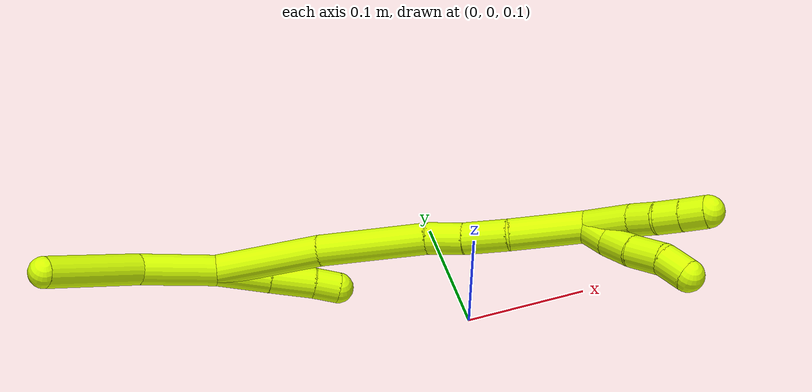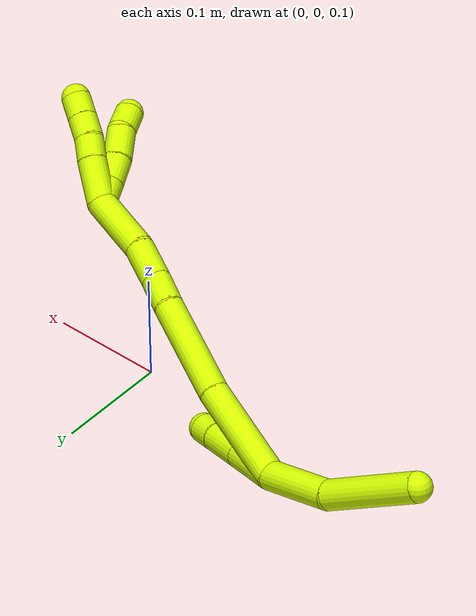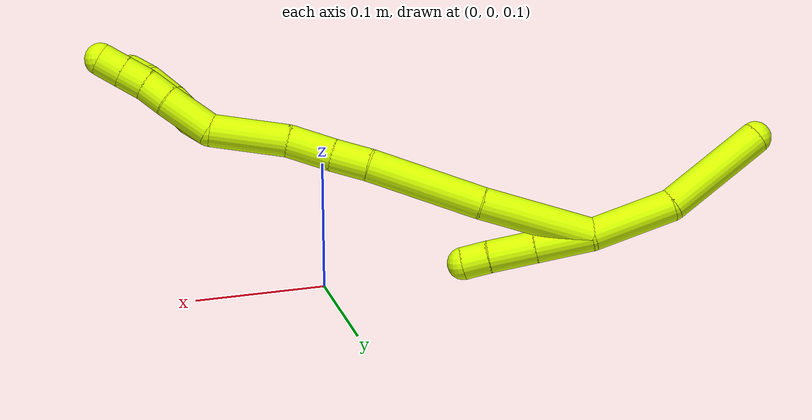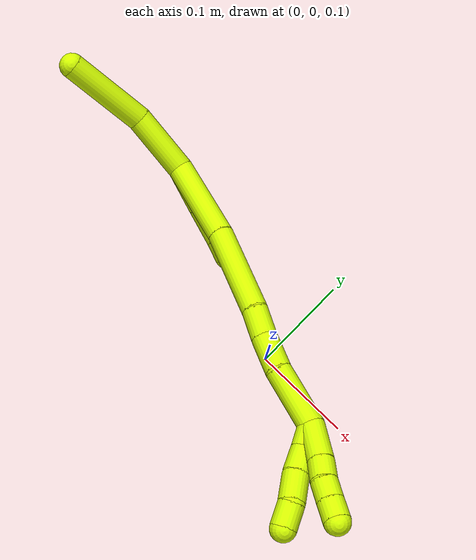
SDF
<sdf version="1.7">
 <world name="default">
  <model name="15">
   <static>0</static>
   <link name="15">
    <collision name="collision-cylinder-e_1_2_8">
     <pose>-0.031103 -0.007556 0.003447 1.14281 -1.30988 -0.917365</pose>
     <geometry><cylinder><radius>0.0125</radius><length>0.064386</length></cylinder></geometry>
     <surface>
      <friction><ode><mu>1.16</mu><mu2>1.16</mu2><slip1>0</slip1><slip2>0</slip2></ode></friction>
      <contact><ode><kp>1e+06</kp><kd>1</kd><max_vel>0</max_vel><min_depth>0.001</min_depth></ode></contact>
     </surface>
    </collision>
    <visual name="visual-cylinder-e_1_2_8">
     <pose>-0.031103 -0.007556 0.003447 1.14281 -1.30988 -0.917365</pose>
     <geometry><cylinder><radius>0.0125</radius><length>0.064386</length></cylinder></geometry>
     <material><ambient>0.835294 1 0 1</ambient></material>
    </visual>
    <collision name="collision-cylinder-e_2_8_6">
     <pose>-0.09797 -0.033573 0.021476 0.902258 -0.988933 -0.510956</pose>
     <geometry><cylinder><radius>0.0125</radius><length>0.085614</length></cylinder></geometry>
     <surface>
      <friction><ode><mu>1.16</mu><mu2>1.16</mu2><slip1>0</slip1><slip2>0</slip2></ode></friction>
      <contact><ode><kp>1e+06</kp><kd>1</kd><max_vel>0</max_vel><min_depth>0.001</min_depth></ode></contact>
     </surface>
    </collision>
    <visual name="visual-cylinder-e_2_8_6">
     <pose>-0.09797 -0.033573 0.021476 0.902258 -0.988933 -0.510956</pose>
     <geometry><cylinder><radius>0.0125</radius><length>0.085614</length></cylinder></geometry>
     <material><ambient>0.835294 1 0 1</ambient></material>
    </visual>
    <collision name="collision-cylinder-e_1_2_9">
     <pose>0.021823 0.000692 -0.000526 -2.22 1.53098 -2.1879</pose>
     <geometry><cylinder><radius>0.0125</radius><length>0.043681</length></cylinder></geometry>
     <surface>
      <friction><ode><mu>1.16</mu><mu2>1.16</mu2><slip1>0</slip1><slip2>0</slip2></ode></friction>
      <contact><ode><kp>1e+06</kp><kd>1</kd><max_vel>0</max_vel><min_depth>0.001</min_depth></ode></contact>
     </surface>
    </collision>
    <visual name="visual-cylinder-e_1_2_9">
     <pose>0.021823 0.000692 -0.000526 -2.22 1.53098 -2.1879</pose>
     <geometry><cylinder><radius>0.0125</radius><length>0.043681</length></cylinder></geometry>
     <material><ambient>0.835294 1 0 1</ambient></material>
    </visual>
    <collision name="collision-cylinder-e_2_9_10">
     <pose>0.061522 0.002163 -0.001398 -1.99042 1.52315 -1.94649</pose>
     <geometry><cylinder><radius>0.0125</radius><length>0.035793</length></cylinder></geometry>
     <surface>
      <friction><ode><mu>1.16</mu><mu2>1.16</mu2><slip1>0</slip1><slip2>0</slip2></ode></friction>
      <contact><ode><kp>1e+06</kp><kd>1</kd><max_vel>0</max_vel><min_depth>0.001</min_depth></ode></contact>
     </surface>
    </collision>
    <visual name="visual-cylinder-e_2_9_10">
     <pose>0.061522 0.002163 -0.001398 -1.99042 1.52315 -1.94649</pose>
     <geometry><cylinder><radius>0.0125</radius><length>0.035793</length></cylinder></geometry>
     <material><ambient>0.835294 1 0 1</ambient></material>
    </visual>
    <collision name="collision-cylinder-e_3_10_5">
     <pose>0.089635 0.002913 -0.002488 3.10344 1.49834 3.10057</pose>
     <geometry><cylinder><radius>0.0125</radius><length>0.020526</length></cylinder></geometry>
     <surface>
      <friction><ode><mu>1.16</mu><mu2>1.16</mu2><slip1>0</slip1><slip2>0</slip2></ode></friction>
      <contact><ode><kp>1e+06</kp><kd>1</kd><max_vel>0</max_vel><min_depth>0.001</min_depth></ode></contact>
     </surface>
    </collision>
    <visual name="visual-cylinder-e_3_10_5">
     <pose>0.089635 0.002913 -0.002488 3.10344 1.49834 3.10057</pose>
     <geometry><cylinder><radius>0.0125</radius><length>0.020526</length></cylinder></geometry>
     <material><ambient>0.835294 1 0 1</ambient></material>
    </visual>
    <collision name="collision-cylinder-e_1_2_11">
     <pose>0.038336 0.001782 0.020705 -0.085856 1.07405 -0.051138</pose>
     <geometry><cylinder><radius>0.0125</radius><length>0.087212</length></cylinder></geometry>
     <surface>
      <friction><ode><mu>1.16</mu><mu2>1.16</mu2><slip1>0</slip1><slip2>0</slip2></ode></friction>
      <contact><ode><kp>1e+06</kp><kd>1</kd><max_vel>0</max_vel><min_depth>0.001</min_depth></ode></contact>
     </surface>
    </collision>
    <visual name="visual-cylinder-e_1_2_11">
     <pose>0.038336 0.001782 0.020705 -0.085856 1.07405 -0.051138</pose>
     <geometry><cylinder><radius>0.0125</radius><length>0.087212</length></cylinder></geometry>
     <material><ambient>0.835294 1 0 1</ambient></material>
    </visual>
    <collision name="collision-cylinder-e_2_11_12">
     <pose>0.115292 0.000546 0.063176 0.137758 1.05349 0.080197</pose>
     <geometry><cylinder><radius>0.0125</radius><length>0.088869</length></cylinder></geometry>
     <surface>
      <friction><ode><mu>1.16</mu><mu2>1.16</mu2><slip1>0</slip1><slip2>0</slip2></ode></friction>
      <contact><ode><kp>1e+06</kp><kd>1</kd><max_vel>0</max_vel><min_depth>0.001</min_depth></ode></contact>
     </surface>
    </collision>
    <visual name="visual-cylinder-e_2_11_12">
     <pose>0.115292 0.000546 0.063176 0.137758 1.05349 0.080197</pose>
     <geometry><cylinder><radius>0.0125</radius><length>0.088869</length></cylinder></geometry>
     <material><ambient>0.835294 1 0 1</ambient></material>
    </visual>
    <collision name="collision-cylinder-e_3_12_13">
     <pose>0.16696 -0.004605 0.090848 0.34679 1.12225 0.219291</pose>
     <geometry><cylinder><radius>0.0125</radius><length>0.02896</length></cylinder></geometry>
     <surface>
      <friction><ode><mu>1.16</mu><mu2>1.16</mu2><slip1>0</slip1><slip2>0</slip2></ode></friction>
      <contact><ode><kp>1e+06</kp><kd>1</kd><max_vel>0</max_vel><min_depth>0.001</min_depth></ode></contact>
     </surface>
    </collision>
    <visual name="visual-cylinder-e_3_12_13">
     <pose>0.16696 -0.004605 0.090848 0.34679 1.12225 0.219291</pose>
     <geometry><cylinder><radius>0.0125</radius><length>0.02896</length></cylinder></geometry>
     <material><ambient>0.835294 1 0 1</ambient></material>
    </visual>
    <collision name="collision-cylinder-e_4_13_14">
     <pose>0.19564 -0.008215 0.105039 0.176148 1.07694 0.105398</pose>
     <geometry><cylinder><radius>0.0125</radius><length>0.035509</length></cylinder></geometry>
     <surface>
      <friction><ode><mu>1.16</mu><mu2>1.16</mu2><slip1>0</slip1><slip2>0</slip2></ode></friction>
      <contact><ode><kp>1e+06</kp><kd>1</kd><max_vel>0</max_vel><min_depth>0.001</min_depth></ode></contact>
     </surface>
    </collision>
    <visual name="visual-cylinder-e_4_13_14">
     <pose>0.19564 -0.008215 0.105039 0.176148 1.07694 0.105398</pose>
     <geometry><cylinder><radius>0.0125</radius><length>0.035509</length></cylinder></geometry>
     <material><ambient>0.835294 1 0 1</ambient></material>
    </visual>
    <collision name="collision-cylinder-e_5_14_1">
     <pose>0.239169 -0.008092 0.123468 -0.156181 1.2181 -0.109051</pose>
     <geometry><cylinder><radius>0.0125</radius><length>0.05945</length></cylinder></geometry>
     <surface>
      <friction><ode><mu>1.16</mu><mu2>1.16</mu2><slip1>0</slip1><slip2>0</slip2></ode></friction>
      <contact><ode><kp>1e+06</kp><kd>1</kd><max_vel>0</max_vel><min_depth>0.001</min_depth></ode></contact>
     </surface>
    </collision>
    <visual name="visual-cylinder-e_5_14_1">
     <pose>0.239169 -0.008092 0.123468 -0.156181 1.2181 -0.109051</pose>
     <geometry><cylinder><radius>0.0125</radius><length>0.05945</length></cylinder></geometry>
     <material><ambient>0.835294 1 0 1</ambient></material>
    </visual>
    <collision name="collision-cylinder-e_1_1_15">
     <pose>0.274676 -0.01451 0.137168 1.15311 0.714874 0.476492</pose>
     <geometry><cylinder><radius>0.0125</radius><length>0.023224</length></cylinder></geometry>
     <surface>
      <friction><ode><mu>1.16</mu><mu2>1.16</mu2><slip1>0</slip1><slip2>0</slip2></ode></friction>
      <contact><ode><kp>1e+06</kp><kd>1</kd><max_vel>0</max_vel><min_depth>0.001</min_depth></ode></contact>
     </surface>
    </collision>
    <visual name="visual-cylinder-e_1_1_15">
     <pose>0.274676 -0.01451 0.137168 1.15311 0.714874 0.476492</pose>
     <geometry><cylinder><radius>0.0125</radius><length>0.023224</length></cylinder></geometry>
     <material><ambient>0.835294 1 0 1</ambient></material>
    </visual>
    <collision name="collision-cylinder-e_2_15_16">
     <pose>0.28914 -0.031004 0.147076 0.927914 0.574187 0.293356</pose>
     <geometry><cylinder><radius>0.0125</radius><length>0.025232</length></cylinder></geometry>
     <surface>
      <friction><ode><mu>1.16</mu><mu2>1.16</mu2><slip1>0</slip1><slip2>0</slip2></ode></friction>
      <contact><ode><kp>1e+06</kp><kd>1</kd><max_vel>0</max_vel><min_depth>0.001</min_depth></ode></contact>
     </surface>
    </collision>
    <visual name="visual-cylinder-e_2_15_16">
     <pose>0.28914 -0.031004 0.147076 0.927914 0.574187 0.293356</pose>
     <geometry><cylinder><radius>0.0125</radius><length>0.025232</length></cylinder></geometry>
     <material><ambient>0.835294 1 0 1</ambient></material>
    </visual>
    <collision name="collision-cylinder-e_3_16_17">
     <pose>0.305066 -0.047235 0.160944 0.800864 0.698761 0.30603</pose>
     <geometry><cylinder><radius>0.0125</radius><length>0.028209</length></cylinder></geometry>
     <surface>
      <friction><ode><mu>1.16</mu><mu2>1.16</mu2><slip1>0</slip1><slip2>0</slip2></ode></friction>
      <contact><ode><kp>1e+06</kp><kd>1</kd><max_vel>0</max_vel><min_depth>0.001</min_depth></ode></contact>
     </surface>
    </collision>
    <visual name="visual-cylinder-e_3_16_17">
     <pose>0.305066 -0.047235 0.160944 0.800864 0.698761 0.30603</pose>
     <geometry><cylinder><radius>0.0125</radius><length>0.028209</length></cylinder></geometry>
     <material><ambient>0.835294 1 0 1</ambient></material>
    </visual>
    <collision name="collision-cylinder-e_4_17_4">
     <pose>0.321731 -0.063264 0.171624 1.20572 0.708546 0.498612</pose>
     <geometry><cylinder><radius>0.0125</radius><length>0.023334</length></cylinder></geometry>
     <surface>
      <friction><ode><mu>1.16</mu><mu2>1.16</mu2><slip1>0</slip1><slip2>0</slip2></ode></friction>
      <contact><ode><kp>1e+06</kp><kd>1</kd><max_vel>0</max_vel><min_depth>0.001</min_depth></ode></contact>
     </surface>
    </collision>
    <visual name="visual-cylinder-e_4_17_4">
     <pose>0.321731 -0.063264 0.171624 1.20572 0.708546 0.498612</pose>
     <geometry><cylinder><radius>0.0125</radius><length>0.023334</length></cylinder></geometry>
     <material><ambient>0.835294 1 0 1</ambient></material>
    </visual>
    <collision name="collision-cylinder-e_1_1_18">
     <pose>0.280966 -0.010761 0.146833 0.312083 0.785742 0.130208</pose>
     <geometry><cylinder><radius>0.0125</radius><length>0.039308</length></cylinder></geometry>
     <surface>
      <friction><ode><mu>1.16</mu><mu2>1.16</mu2><slip1>0</slip1><slip2>0</slip2></ode></friction>
      <contact><ode><kp>1e+06</kp><kd>1</kd><max_vel>0</max_vel><min_depth>0.001</min_depth></ode></contact>
     </surface>
    </collision>
    <visual name="visual-cylinder-e_1_1_18">
     <pose>0.280966 -0.010761 0.146833 0.312083 0.785742 0.130208</pose>
     <geometry><cylinder><radius>0.0125</radius><length>0.039308</length></cylinder></geometry>
     <material><ambient>0.835294 1 0 1</ambient></material>
    </visual>
    <collision name="collision-cylinder-e_2_18_19">
     <pose>0.301888 -0.018083 0.166885 0.420793 0.753398 0.168562</pose>
     <geometry><cylinder><radius>0.0125</radius><length>0.02052</length></cylinder></geometry>
     <surface>
      <friction><ode><mu>1.16</mu><mu2>1.16</mu2><slip1>0</slip1><slip2>0</slip2></ode></friction>
      <contact><ode><kp>1e+06</kp><kd>1</kd><max_vel>0</max_vel><min_depth>0.001</min_depth></ode></contact>
     </surface>
    </collision>
    <visual name="visual-cylinder-e_2_18_19">
     <pose>0.301888 -0.018083 0.166885 0.420793 0.753398 0.168562</pose>
     <geometry><cylinder><radius>0.0125</radius><length>0.02052</length></cylinder></geometry>
     <material><ambient>0.835294 1 0 1</ambient></material>
    </visual>
    <collision name="collision-cylinder-e_3_19_20">
     <pose>0.316699 -0.022892 0.179849 0.278259 0.884803 0.132479</pose>
     <geometry><cylinder><radius>0.0125</radius><length>0.020141</length></cylinder></geometry>
     <surface>
      <friction><ode><mu>1.16</mu><mu2>1.16</mu2><slip1>0</slip1><slip2>0</slip2></ode></friction>
      <contact><ode><kp>1e+06</kp><kd>1</kd><max_vel>0</max_vel><min_depth>0.001</min_depth></ode></contact>
     </surface>
    </collision>
    <visual name="visual-cylinder-e_3_19_20">
     <pose>0.316699 -0.022892 0.179849 0.278259 0.884803 0.132479</pose>
     <geometry><cylinder><radius>0.0125</radius><length>0.020141</length></cylinder></geometry>
     <material><ambient>0.835294 1 0 1</ambient></material>
    </visual>
    <collision name="collision-cylinder-e_4_20_3">
     <pose>0.332199 -0.02625 0.192174 0.253696 0.878077 0.119637</pose>
     <geometry><cylinder><radius>0.0125</radius><length>0.020031</length></cylinder></geometry>
     <surface>
      <friction><ode><mu>1.16</mu><mu2>1.16</mu2><slip1>0</slip1><slip2>0</slip2></ode></friction>
      <contact><ode><kp>1e+06</kp><kd>1</kd><max_vel>0</max_vel><min_depth>0.001</min_depth></ode></contact>
     </surface>
    </collision>
    <visual name="visual-cylinder-e_4_20_3">
     <pose>0.332199 -0.02625 0.192174 0.253696 0.878077 0.119637</pose>
     <geometry><cylinder><radius>0.0125</radius><length>0.020031</length></cylinder></geometry>
     <material><ambient>0.835294 1 0 1</ambient></material>
    </visual>
    <collision name="collision-sphere-3">
     <pose>0.339906 -0.027855 0.198366 0 -0 0</pose>
     <geometry><sphere><radius>0.0125</radius></sphere></geometry>
     <surface>
      <friction><ode><mu>1.16</mu><mu2>1.16</mu2><slip1>0</slip1><slip2>0</slip2></ode></friction>
      <contact><ode><kp>1e+06</kp><kd>1</kd><max_vel>0</max_vel><min_depth>0.001</min_depth></ode></contact>
     </surface>
    </collision>
    <visual name="visual-sphere-3">
     <pose>0.339906 -0.027855 0.198366 0 -0 0</pose>
     <geometry><sphere><radius>0.0125</radius></sphere></geometry>
     <material><ambient>0.835294 1 0 1</ambient></material>
    </visual>
    <collision name="collision-sphere-20">
     <pose>0.324492 -0.024644 0.185983 0 -0 0</pose>
     <geometry><sphere><radius>0.0125</radius></sphere></geometry>
     <surface>
      <friction><ode><mu>1.16</mu><mu2>1.16</mu2><slip1>0</slip1><slip2>0</slip2></ode></friction>
      <contact><ode><kp>1e+06</kp><kd>1</kd><max_vel>0</max_vel><min_depth>0.001</min_depth></ode></contact>
     </surface>
    </collision>
    <visual name="visual-sphere-20">
     <pose>0.324492 -0.024644 0.185983 0 -0 0</pose>
     <geometry><sphere><radius>0.0125</radius></sphere></geometry>
     <material><ambient>0.835294 1 0 1</ambient></material>
    </visual>
    <collision name="collision-sphere-19">
     <pose>0.308907 -0.02114 0.173716 0 -0 0</pose>
     <geometry><sphere><radius>0.0125</radius></sphere></geometry>
     <surface>
      <friction><ode><mu>1.16</mu><mu2>1.16</mu2><slip1>0</slip1><slip2>0</slip2></ode></friction>
      <contact><ode><kp>1e+06</kp><kd>1</kd><max_vel>0</max_vel><min_depth>0.001</min_depth></ode></contact>
     </surface>
    </collision>
    <visual name="visual-sphere-19">
     <pose>0.308907 -0.02114 0.173716 0 -0 0</pose>
     <geometry><sphere><radius>0.0125</radius></sphere></geometry>
     <material><ambient>0.835294 1 0 1</ambient></material>
    </visual>
    <collision name="collision-sphere-5">
     <pose>0.099871 0.002885 -0.00323 0 -0 0</pose>
     <geometry><sphere><radius>0.0125</radius></sphere></geometry>
     <surface>
      <friction><ode><mu>1.16</mu><mu2>1.16</mu2><slip1>0</slip1><slip2>0</slip2></ode></friction>
      <contact><ode><kp>1e+06</kp><kd>1</kd><max_vel>0</max_vel><min_depth>0.001</min_depth></ode></contact>
     </surface>
    </collision>
    <visual name="visual-sphere-5">
     <pose>0.099871 0.002885 -0.00323 0 -0 0</pose>
     <geometry><sphere><radius>0.0125</radius></sphere></geometry>
     <material><ambient>0.835294 1 0 1</ambient></material>
    </visual>
    <collision name="collision-sphere-10">
     <pose>0.079398 0.002942 -0.001746 0 -0 0</pose>
     <geometry><sphere><radius>0.0125</radius></sphere></geometry>
     <surface>
      <friction><ode><mu>1.16</mu><mu2>1.16</mu2><slip1>0</slip1><slip2>0</slip2></ode></friction>
      <contact><ode><kp>1e+06</kp><kd>1</kd><max_vel>0</max_vel><min_depth>0.001</min_depth></ode></contact>
     </surface>
    </collision>
    <visual name="visual-sphere-10">
     <pose>0.079398 0.002942 -0.001746 0 -0 0</pose>
     <geometry><sphere><radius>0.0125</radius></sphere></geometry>
     <material><ambient>0.835294 1 0 1</ambient></material>
    </visual>
    <collision name="collision-sphere-6">
     <pose>-0.133732 -0.052034 0.036058 0 -0 0</pose>
     <geometry><sphere><radius>0.0125</radius></sphere></geometry>
     <surface>
      <friction><ode><mu>1.16</mu><mu2>1.16</mu2><slip1>0</slip1><slip2>0</slip2></ode></friction>
      <contact><ode><kp>1e+06</kp><kd>1</kd><max_vel>0</max_vel><min_depth>0.001</min_depth></ode></contact>
     </surface>
    </collision>
    <visual name="visual-sphere-6">
     <pose>-0.133732 -0.052034 0.036058 0 -0 0</pose>
     <geometry><sphere><radius>0.0125</radius></sphere></geometry>
     <material><ambient>0.835294 1 0 1</ambient></material>
    </visual>
    <collision name="collision-sphere-9">
     <pose>0.043646 0.001385 -0.001051 0 -0 0</pose>
     <geometry><sphere><radius>0.0125</radius></sphere></geometry>
     <surface>
      <friction><ode><mu>1.16</mu><mu2>1.16</mu2><slip1>0</slip1><slip2>0</slip2></ode></friction>
      <contact><ode><kp>1e+06</kp><kd>1</kd><max_vel>0</max_vel><min_depth>0.001</min_depth></ode></contact>
     </surface>
    </collision>
    <visual name="visual-sphere-9">
     <pose>0.043646 0.001385 -0.001051 0 -0 0</pose>
     <geometry><sphere><radius>0.0125</radius></sphere></geometry>
     <material><ambient>0.835294 1 0 1</ambient></material>
    </visual>
    <collision name="collision-sphere-2">
     <geometry><sphere><radius>0.0125</radius></sphere></geometry>
     <surface>
      <friction><ode><mu>1.16</mu><mu2>1.16</mu2><slip1>0</slip1><slip2>0</slip2></ode></friction>
      <contact><ode><kp>1e+06</kp><kd>1</kd><max_vel>0</max_vel><min_depth>0.001</min_depth></ode></contact>
     </surface>
    </collision>
    <visual name="visual-sphere-2">
     <geometry><sphere><radius>0.0125</radius></sphere></geometry>
     <material><ambient>0.835294 1 0 1</ambient></material>
    </visual>
    <collision name="collision-sphere-8">
     <pose>-0.062207 -0.015111 0.006893 0 -0 0</pose>
     <geometry><sphere><radius>0.0125</radius></sphere></geometry>
     <surface>
      <friction><ode><mu>1.16</mu><mu2>1.16</mu2><slip1>0</slip1><slip2>0</slip2></ode></friction>
      <contact><ode><kp>1e+06</kp><kd>1</kd><max_vel>0</max_vel><min_depth>0.001</min_depth></ode></contact>
     </surface>
    </collision>
    <visual name="visual-sphere-8">
     <pose>-0.062207 -0.015111 0.006893 0 -0 0</pose>
     <geometry><sphere><radius>0.0125</radius></sphere></geometry>
     <material><ambient>0.835294 1 0 1</ambient></material>
    </visual>
    <collision name="collision-sphere-11">
     <pose>0.076671 0.003564 0.04141 0 -0 0</pose>
     <geometry><sphere><radius>0.0125</radius></sphere></geometry>
     <surface>
      <friction><ode><mu>1.16</mu><mu2>1.16</mu2><slip1>0</slip1><slip2>0</slip2></ode></friction>
      <contact><ode><kp>1e+06</kp><kd>1</kd><max_vel>0</max_vel><min_depth>0.001</min_depth></ode></contact>
     </surface>
    </collision>
    <visual name="visual-sphere-11">
     <pose>0.076671 0.003564 0.04141 0 -0 0</pose>
     <geometry><sphere><radius>0.0125</radius></sphere></geometry>
     <material><ambient>0.835294 1 0 1</ambient></material>
    </visual>
    <collision name="collision-sphere-12">
     <pose>0.153912 -0.002471 0.084943 0 -0 0</pose>
     <geometry><sphere><radius>0.0125</radius></sphere></geometry>
     <surface>
      <friction><ode><mu>1.16</mu><mu2>1.16</mu2><slip1>0</slip1><slip2>0</slip2></ode></friction>
      <contact><ode><kp>1e+06</kp><kd>1</kd><max_vel>0</max_vel><min_depth>0.001</min_depth></ode></contact>
     </surface>
    </collision>
    <visual name="visual-sphere-12">
     <pose>0.153912 -0.002471 0.084943 0 -0 0</pose>
     <geometry><sphere><radius>0.0125</radius></sphere></geometry>
     <material><ambient>0.835294 1 0 1</ambient></material>
    </visual>
    <collision name="collision-sphere-13">
     <pose>0.180008 -0.00674 0.096754 0 -0 0</pose>
     <geometry><sphere><radius>0.0125</radius></sphere></geometry>
     <surface>
      <friction><ode><mu>1.16</mu><mu2>1.16</mu2><slip1>0</slip1><slip2>0</slip2></ode></friction>
      <contact><ode><kp>1e+06</kp><kd>1</kd><max_vel>0</max_vel><min_depth>0.001</min_depth></ode></contact>
     </surface>
    </collision>
    <visual name="visual-sphere-13">
     <pose>0.180008 -0.00674 0.096754 0 -0 0</pose>
     <geometry><sphere><radius>0.0125</radius></sphere></geometry>
     <material><ambient>0.835294 1 0 1</ambient></material>
    </visual>
    <collision name="collision-sphere-14">
     <pose>0.211273 -0.009689 0.113325 0 -0 0</pose>
     <geometry><sphere><radius>0.0125</radius></sphere></geometry>
     <surface>
      <friction><ode><mu>1.16</mu><mu2>1.16</mu2><slip1>0</slip1><slip2>0</slip2></ode></friction>
      <contact><ode><kp>1e+06</kp><kd>1</kd><max_vel>0</max_vel><min_depth>0.001</min_depth></ode></contact>
     </surface>
    </collision>
    <visual name="visual-sphere-14">
     <pose>0.211273 -0.009689 0.113325 0 -0 0</pose>
     <geometry><sphere><radius>0.0125</radius></sphere></geometry>
     <material><ambient>0.835294 1 0 1</ambient></material>
    </visual>
    <collision name="collision-sphere-1">
     <pose>0.267064 -0.006495 0.133611 0 -0 0</pose>
     <geometry><sphere><radius>0.0125</radius></sphere></geometry>
     <surface>
      <friction><ode><mu>1.16</mu><mu2>1.16</mu2><slip1>0</slip1><slip2>0</slip2></ode></friction>
      <contact><ode><kp>1e+06</kp><kd>1</kd><max_vel>0</max_vel><min_depth>0.001</min_depth></ode></contact>
     </surface>
    </collision>
    <visual name="visual-sphere-1">
     <pose>0.267064 -0.006495 0.133611 0 -0 0</pose>
     <geometry><sphere><radius>0.0125</radius></sphere></geometry>
     <material><ambient>0.835294 1 0 1</ambient></material>
    </visual>
    <collision name="collision-sphere-18">
     <pose>0.294869 -0.015026 0.160055 0 -0 0</pose>
     <geometry><sphere><radius>0.0125</radius></sphere></geometry>
     <surface>
      <friction><ode><mu>1.16</mu><mu2>1.16</mu2><slip1>0</slip1><slip2>0</slip2></ode></friction>
      <contact><ode><kp>1e+06</kp><kd>1</kd><max_vel>0</max_vel><min_depth>0.001</min_depth></ode></contact>
     </surface>
    </collision>
    <visual name="visual-sphere-18">
     <pose>0.294869 -0.015026 0.160055 0 -0 0</pose>
     <geometry><sphere><radius>0.0125</radius></sphere></geometry>
     <material><ambient>0.835294 1 0 1</ambient></material>
    </visual>
    <collision name="collision-sphere-15">
     <pose>0.282288 -0.022526 0.140726 0 -0 0</pose>
     <geometry><sphere><radius>0.0125</radius></sphere></geometry>
     <surface>
      <friction><ode><mu>1.16</mu><mu2>1.16</mu2><slip1>0</slip1><slip2>0</slip2></ode></friction>
      <contact><ode><kp>1e+06</kp><kd>1</kd><max_vel>0</max_vel><min_depth>0.001</min_depth></ode></contact>
     </surface>
    </collision>
    <visual name="visual-sphere-15">
     <pose>0.282288 -0.022526 0.140726 0 -0 0</pose>
     <geometry><sphere><radius>0.0125</radius></sphere></geometry>
     <material><ambient>0.835294 1 0 1</ambient></material>
    </visual>
    <collision name="collision-sphere-16">
     <pose>0.295993 -0.039482 0.153427 0 -0 0</pose>
     <geometry><sphere><radius>0.0125</radius></sphere></geometry>
     <surface>
      <friction><ode><mu>1.16</mu><mu2>1.16</mu2><slip1>0</slip1><slip2>0</slip2></ode></friction>
      <contact><ode><kp>1e+06</kp><kd>1</kd><max_vel>0</max_vel><min_depth>0.001</min_depth></ode></contact>
     </surface>
    </collision>
    <visual name="visual-sphere-16">
     <pose>0.295993 -0.039482 0.153427 0 -0 0</pose>
     <geometry><sphere><radius>0.0125</radius></sphere></geometry>
     <material><ambient>0.835294 1 0 1</ambient></material>
    </visual>
    <collision name="collision-sphere-17">
     <pose>0.314139 -0.054989 0.168461 0 -0 0</pose>
     <geometry><sphere><radius>0.0125</radius></sphere></geometry>
     <surface>
      <friction><ode><mu>1.16</mu><mu2>1.16</mu2><slip1>0</slip1><slip2>0</slip2></ode></friction>
      <contact><ode><kp>1e+06</kp><kd>1</kd><max_vel>0</max_vel><min_depth>0.001</min_depth></ode></contact>
     </surface>
    </collision>
    <visual name="visual-sphere-17">
     <pose>0.314139 -0.054989 0.168461 0 -0 0</pose>
     <geometry><sphere><radius>0.0125</radius></sphere></geometry>
     <material><ambient>0.835294 1 0 1</ambient></material>
    </visual>
    <collision name="collision-sphere-4">
     <pose>0.329323 -0.071539 0.174786 0 -0 0</pose>
     <geometry><sphere><radius>0.0125</radius></sphere></geometry>
     <surface>
      <friction><ode><mu>1.16</mu><mu2>1.16</mu2><slip1>0</slip1><slip2>0</slip2></ode></friction>
      <contact><ode><kp>1e+06</kp><kd>1</kd><max_vel>0</max_vel><min_depth>0.001</min_depth></ode></contact>
     </surface>
    </collision>
    <visual name="visual-sphere-4">
     <pose>0.329323 -0.071539 0.174786 0 -0 0</pose>
     <geometry><sphere><radius>0.0125</radius></sphere></geometry>
     <material><ambient>0.835294 1 0 1</ambient></material>
    </visual>
    <inertial>
     <pose>0.125673 -0.012806 0.073556 0 -0 0</pose>
     <mass>0.75</mass>
     <inertia><ixx>0.000126</ixx><ixy>0</ixy><ixz>0</ixz><iyy>0.000225</iyy><iyz>0</iyz><izz>-3e-05</izz></inertia>
    </inertial>
   </link>
   <pose>-0.190623 0.073119 0.149083 0.044343 0.208145 -0.324441</pose>
  </model>
 </world>
</sdf>
